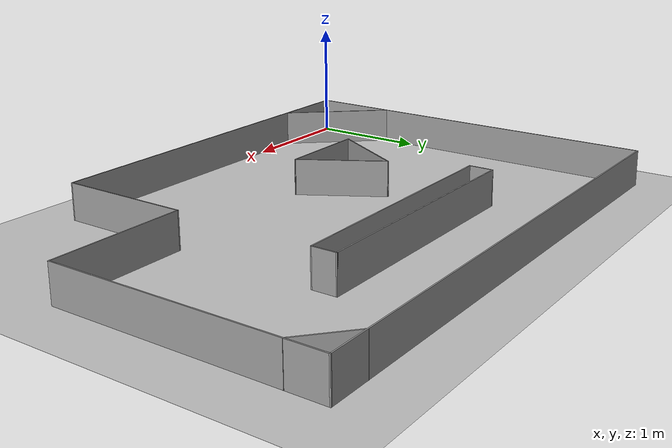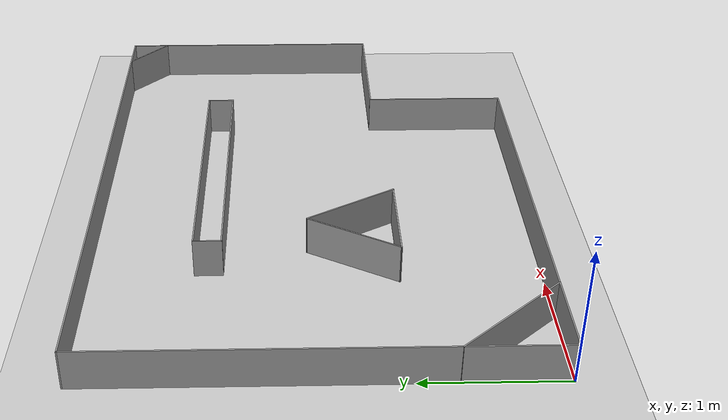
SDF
<sdf version='1.6'>
  <world name='default'>
    <light name='sun' type='directional'>
      <cast_shadows>1</cast_shadows>
      <pose frame=''>0 0 10 0 -0 0</pose>
      <diffuse>0.8 0.8 0.8 1</diffuse>
      <specular>0.1 0.1 0.1 1</specular>
      <attenuation>
        <range>1000</range>
        <constant>0.9</constant>
        <linear>0.01</linear>
        <quadratic>0.001</quadratic>
      </attenuation>
      <direction>-0.5 0.5 -1</direction>
    </light>

    <model name='ground_plane'>
      <static>1</static>
      <link name='link'>
        <collision name='collision'>
          <geometry>
            <plane>
              <normal>0 0 1</normal>
              <size>100 100</size>
            </plane>
          </geometry>
          <surface>
            <friction>
              <ode>
                <mu>100</mu>
                <mu2>50</mu2>
              </ode>
              <torsional>
                <ode/>
              </torsional>
            </friction>
            <contact>
              <ode/>
            </contact>
            <bounce/>
          </surface>
          <max_contacts>10</max_contacts>
        </collision>
        <visual name='visual'>
          <cast_shadows>0</cast_shadows>
          <geometry>
            <plane>
              <normal>0 0 1</normal>
              <size>100 100</size>
            </plane>
          </geometry>
          <material>
            <script>
              <uri>file://media/materials/scripts/gazebo.material</uri>
              <name>Gazebo/Grey</name>
            </script>
          </material>
        </visual>
        <self_collide>0</self_collide>
        <kinematic>0</kinematic>
        <gravity>1</gravity>
      </link>
    </model>

    <gravity>0 0 -9.8</gravity>
    <magnetic_field>6e-06 2.3e-05 -4.2e-05</magnetic_field>
    <atmosphere type='adiabatic'/>
    <physics name='default_physics' default='0' type='ode'>
      <max_step_size>0.001</max_step_size>
      <real_time_factor>1</real_time_factor>
      <real_time_update_rate>1000</real_time_update_rate>
    </physics>

    <scene>
      <ambient>0.4 0.4 0.4 1</ambient>
      <background>0.7 0.7 0.7 1</background>
      <shadows>1</shadows>
    </scene>

    <spherical_coordinates>
      <surface_model>EARTH_WGS84</surface_model>
      <latitude_deg>0</latitude_deg>
      <longitude_deg>0</longitude_deg>
      <elevation>0</elevation>
      <heading_deg>0</heading_deg>
    </spherical_coordinates>

    <model name='real_rss.map'>
      <pose frame=''>2.15493 1.60493 0 0 -0 0</pose>
      <link name='Wall_11'>
        <collision name='Wall_11_Collision'>
          <geometry>
            <box>
              <size>1.1 0.01 0.3</size>
            </box>
          </geometry>
          <pose frame=''>0 0 0.15 0 -0 0</pose>
        </collision>
        <visual name='Wall_11_Visual'>
          <pose frame=''>0 0 0.15 0 -0 0</pose>
          <geometry>
            <box>
              <size>1.1 0.01 0.3</size>
            </box>
          </geometry>
          <material>
            <script>
              <uri>file://media/materials/scripts/gazebo.material</uri>
              <name>Gazebo/Grey</name>
            </script>
            <ambient>1 1 1 1</ambient>
          </material>
          <meta>
            <layer>0</layer>
          </meta>
        </visual>
        <pose frame=''>1.05507 -1.05993 0 0 -0 1.5708</pose>
      </link>
      <link name='Wall_12'>
        <collision name='Wall_12_Collision'>
          <geometry>
            <box>
              <size>1.11 0.01 0.3</size>
            </box>
          </geometry>
          <pose frame=''>0 0 0.15 0 -0 0</pose>
        </collision>
        <visual name='Wall_12_Visual'>
          <pose frame=''>0 0 0.15 0 -0 0</pose>
          <geometry>
            <box>
              <size>1.11 0.01 0.3</size>
            </box>
          </geometry>
          <material>
            <script>
              <uri>file://media/materials/scripts/gazebo.material</uri>
              <name>Gazebo/Grey</name>
            </script>
            <ambient>1 1 1 1</ambient>
          </material>
          <meta>
            <layer>0</layer>
          </meta>
        </visual>
        <pose frame=''>1.60507 -0.514933 0 0 -0 0</pose>
      </link>
      <link name='Wall_13'>
        <collision name='Wall_13_Collision'>
          <geometry>
            <box>
              <size>2.13 0.01 0.3</size>
            </box>
          </geometry>
          <pose frame=''>0 0 0.15 0 -0 0</pose>
        </collision>
        <visual name='Wall_13_Visual'>
          <pose frame=''>0 0 0.15 0 -0 0</pose>
          <geometry>
            <box>
              <size>2.13 0.01 0.3</size>
            </box>
          </geometry>
          <material>
            <script>
              <uri>file://media/materials/scripts/gazebo.material</uri>
              <name>Gazebo/Grey</name>
            </script>
            <ambient>1 1 1 1</ambient>
          </material>
          <meta>
            <layer>0</layer>
          </meta>
        </visual>
        <pose frame=''>2.15507 0.545067 0 0 -0 1.5708</pose>
      </link>
      <link name='Wall_14'>
        <collision name='Wall_14_Collision'>
          <geometry>
            <box>
              <size>4.32 0.01 0.3</size>
            </box>
          </geometry>
          <pose frame=''>0 0 0.15 0 -0 0</pose>
        </collision>
        <visual name='Wall_14_Visual'>
          <pose frame=''>0 0 0.15 0 -0 0</pose>
          <geometry>
            <box>
              <size>4.32 0.01 0.3</size>
            </box>
          </geometry>
          <material>
            <script>
              <uri>file://media/materials/scripts/gazebo.material</uri>
              <name>Gazebo/Grey</name>
            </script>
            <ambient>1 1 1 1</ambient>
          </material>
          <meta>
            <layer>0</layer>
          </meta>
        </visual>
        <pose frame=''>7.4e-05 1.60507 0 0 -0 3.14159</pose>
      </link>
      <link name='Wall_15'>
        <collision name='Wall_15_Collision'>
          <geometry>
            <box>
              <size>3.22 0.01 0.3</size>
            </box>
          </geometry>
          <pose frame=''>0 0 0.15 0 -0 0</pose>
        </collision>
        <visual name='Wall_15_Visual'>
          <pose frame=''>0 0 0.15 0 -0 0</pose>
          <geometry>
            <box>
              <size>3.22 0.01 0.3</size>
            </box>
          </geometry>
          <material>
            <script>
              <uri>file://media/materials/scripts/gazebo.material</uri>
              <name>Gazebo/Grey</name>
            </script>
            <ambient>1 1 1 1</ambient>
          </material>
          <meta>
            <layer>0</layer>
          </meta>
        </visual>
        <pose frame=''>-2.15493 6.7e-05 0 0 0 -1.5708</pose>
      </link>
      <link name='Wall_17'>
        <collision name='Wall_17_Collision'>
          <geometry>
            <box>
              <size>0.966713 0.01 0.3</size>
            </box>
          </geometry>
          <pose frame=''>0 0 0.15 0 -0 0</pose>
        </collision>
        <visual name='Wall_17_Visual'>
          <pose frame=''>0 0 0.15 0 -0 0</pose>
          <geometry>
            <box>
              <size>0.966713 0.01 0.3</size>
            </box>
          </geometry>
          <material>
            <script>
              <uri>file://media/materials/scripts/gazebo.material</uri>
              <name>Gazebo/Grey</name>
            </script>
            <ambient>1 1 1 1</ambient>
          </material>
          <meta>
            <layer>0</layer>
          </meta>
        </visual>
        <pose frame=''>-1.83993 -1.24493 0 0 0 -0.851966</pose>
      </link>
      <link name='Wall_19'>
        <collision name='Wall_19_Collision'>
          <geometry>
            <box>
              <size>0.45556 0.01 0.3</size>
            </box>
          </geometry>
          <pose frame=''>0 0 0.15 0 -0 0</pose>
        </collision>
        <visual name='Wall_19_Visual'>
          <pose frame=''>0 0 0.15 0 -0 0</pose>
          <geometry>
            <box>
              <size>0.45556 0.01 0.3</size>
            </box>
          </geometry>
          <material>
            <script>
              <uri>file://media/materials/scripts/gazebo.material</uri>
              <name>Gazebo/Grey</name>
            </script>
            <ambient>1 1 1 1</ambient>
          </material>
          <meta>
            <layer>0</layer>
          </meta>
        </visual>
        <pose frame=''>1.99007 1.45507 0 0 -0 2.40378</pose>
      </link>
      <link name='Wall_21'>
        <collision name='Wall_21_Collision'>
          <geometry>
            <box>
              <size>0.754598 0.01 0.3</size>
            </box>
          </geometry>
          <pose frame=''>0 0 0.15 0 -0 0</pose>
        </collision>
        <visual name='Wall_21_Visual'>
          <pose frame=''>0 0 0.15 0 -0 0</pose>
          <geometry>
            <box>
              <size>0.754598 0.01 0.3</size>
            </box>
          </geometry>
          <material>
            <script>
              <uri>file://media/materials/scripts/gazebo.material</uri>
              <name>Gazebo/Grey</name>
            </script>
            <ambient>1 1 1 1</ambient>
          </material>
          <meta>
            <layer>0</layer>
          </meta>
        </visual>
        <pose frame=''>-0.922426 -0.270433 0 0 -0 1.05848</pose>
      </link>
      <link name='Wall_22'>
        <collision name='Wall_22_Collision'>
          <geometry>
            <box>
              <size>0.759551 0.01 0.3</size>
            </box>
          </geometry>
          <pose frame=''>0 0 0.15 0 -0 0</pose>
        </collision>
        <visual name='Wall_22_Visual'>
          <pose frame=''>0 0 0.15 0 -0 0</pose>
          <geometry>
            <box>
              <size>0.759551 0.01 0.3</size>
            </box>
          </geometry>
          <material>
            <script>
              <uri>file://media/materials/scripts/gazebo.material</uri>
              <name>Gazebo/Grey</name>
            </script>
            <ambient>1 1 1 1</ambient>
          </material>
          <meta>
            <layer>0</layer>
          </meta>
        </visual>
        <pose frame=''>-0.552426 -0.270433 0 0 0 -1.04685</pose>
      </link>
      <link name='Wall_23'>
        <collision name='Wall_23_Collision'>
          <geometry>
            <box>
              <size>0.75 0.01 0.3</size>
            </box>
          </geometry>
          <pose frame=''>0 0 0.15 0 -0 0</pose>
        </collision>
        <visual name='Wall_23_Visual'>
          <pose frame=''>0 0 0.15 0 -0 0</pose>
          <geometry>
            <box>
              <size>0.75 0.01 0.3</size>
            </box>
          </geometry>
          <material>
            <script>
              <uri>file://media/materials/scripts/gazebo.material</uri>
              <name>Gazebo/Grey</name>
            </script>
            <ambient>1 1 1 1</ambient>
          </material>
          <meta>
            <layer>0</layer>
          </meta>
        </visual>
        <pose frame=''>-0.734926 -0.594933 0 0 -0 3.14159</pose>
      </link>
      <link name='Wall_25'>
        <collision name='Wall_25_Collision'>
          <geometry>
            <box>
              <size>0.21 0.01 0.3</size>
            </box>
          </geometry>
          <pose frame=''>0 0 0.15 0 -0 0</pose>
        </collision>
        <visual name='Wall_25_Visual'>
          <pose frame=''>0 0 0.15 0 -0 0</pose>
          <geometry>
            <box>
              <size>0.21 0.01 0.3</size>
            </box>
          </geometry>
          <material>
            <script>
              <uri>file://media/materials/scripts/gazebo.material</uri>
              <name>Gazebo/Grey</name>
            </script>
            <ambient>1 1 1 1</ambient>
          </material>
          <meta>
            <layer>0</layer>
          </meta>
        </visual>
        <pose frame=''>1.06507 0.755067 0 0 0 -1.5708</pose>
      </link>
      <link name='Wall_26'>
        <collision name='Wall_26_Collision'>
          <geometry>
            <box>
              <size>2.08 0.01 0.3</size>
            </box>
          </geometry>
          <pose frame=''>0 0 0.15 0 -0 0</pose>
        </collision>
        <visual name='Wall_26_Visual'>
          <pose frame=''>0 0 0.15 0 -0 0</pose>
          <geometry>
            <box>
              <size>2.08 0.01 0.3</size>
            </box>
          </geometry>
          <material>
            <script>
              <uri>file://media/materials/scripts/gazebo.material</uri>
              <name>Gazebo/Grey</name>
            </script>
            <ambient>1 1 1 1</ambient>
          </material>
          <meta>
            <layer>0</layer>
          </meta>
        </visual>
        <pose frame=''>0.030074 0.655067 0 0 -0 3.14159</pose>
      </link>
      <link name='Wall_27'>
        <collision name='Wall_27_Collision'>
          <geometry>
            <box>
              <size>0.21 0.01 0.3</size>
            </box>
          </geometry>
          <pose frame=''>0 0 0.15 0 -0 0</pose>
        </collision>
        <visual name='Wall_27_Visual'>
          <pose frame=''>0 0 0.15 0 -0 0</pose>
          <geometry>
            <box>
              <size>0.21 0.01 0.3</size>
            </box>
          </geometry>
          <material>
            <script>
              <uri>file://media/materials/scripts/gazebo.material</uri>
              <name>Gazebo/Grey</name>
            </script>
            <ambient>1 1 1 1</ambient>
          </material>
          <meta>
            <layer>0</layer>
          </meta>
        </visual>
        <pose frame=''>-1.00493 0.755067 0 0 -0 1.5708</pose>
      </link>
      <link name='Wall_28'>
        <collision name='Wall_28_Collision'>
          <geometry>
            <box>
              <size>2.08 0.01 0.3</size>
            </box>
          </geometry>
          <pose frame=''>0 0 0.15 0 -0 0</pose>
        </collision>
        <visual name='Wall_28_Visual'>
          <pose frame=''>0 0 0.15 0 -0 0</pose>
          <geometry>
            <box>
              <size>2.08 0.01 0.3</size>
            </box>
          </geometry>
          <material>
            <script>
              <uri>file://media/materials/scripts/gazebo.material</uri>
              <name>Gazebo/Grey</name>
            </script>
            <ambient>1 1 1 1</ambient>
          </material>
          <meta>
            <layer>0</layer>
          </meta>
        </visual>
        <pose frame=''>0.030074 0.855067 0 0 -0 0</pose>
      </link>
      <link name='Wall_3'>
        <collision name='Wall_3_Collision'>
          <geometry>
            <box>
              <size>3.22 0.01 0.3</size>
            </box>
          </geometry>
          <pose frame=''>0 0 0.15 0 -0 0</pose>
        </collision>
        <visual name='Wall_3_Visual'>
          <pose frame=''>0 0 0.15 0 -0 0</pose>
          <geometry>
            <box>
              <size>3.22 0.01 0.3</size>
            </box>
          </geometry>
          <material>
            <script>
              <uri>file://media/materials/scripts/gazebo.material</uri>
              <name>Gazebo/Grey</name>
            </script>
            <ambient>1 1 1 1</ambient>
          </material>
          <meta>
            <layer>0</layer>
          </meta>
        </visual>
        <pose frame=''>-0.549926 -1.60493 0 0 -0 0</pose>
      </link>
      <static>1</static>
    </model>

    <gui fullscreen='0'>
      <camera name='user_camera'>
        <pose frame=''>10.5453 -1.58182 6.70959 0 0.735643 2.82019</pose>
        <view_controller>orbit</view_controller>
        <projection_type>perspective</projection_type>
      </camera>
    </gui>
  </world>
</sdf>
